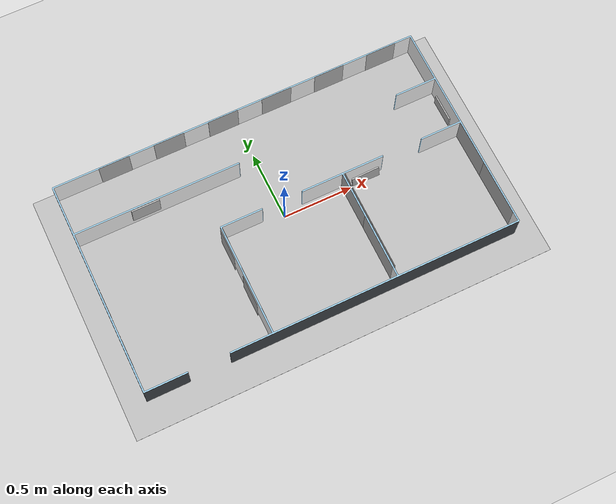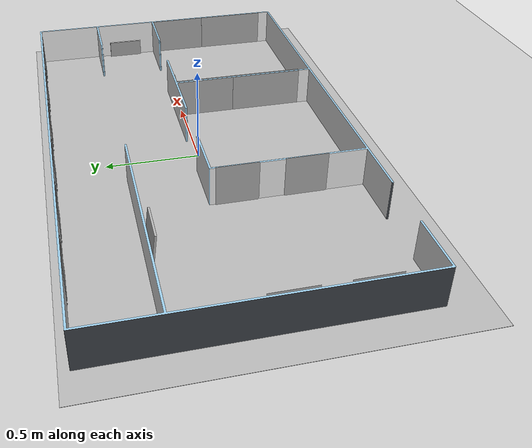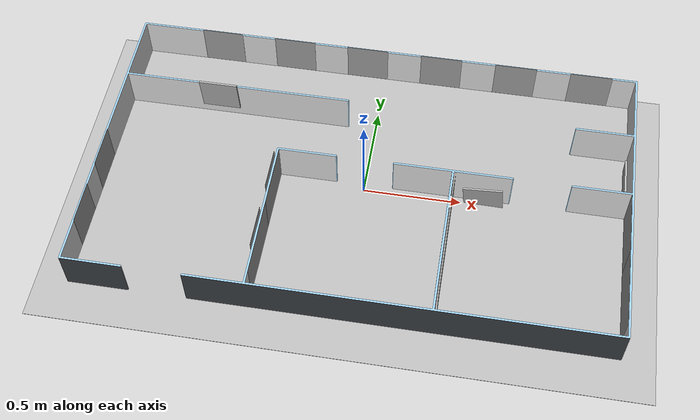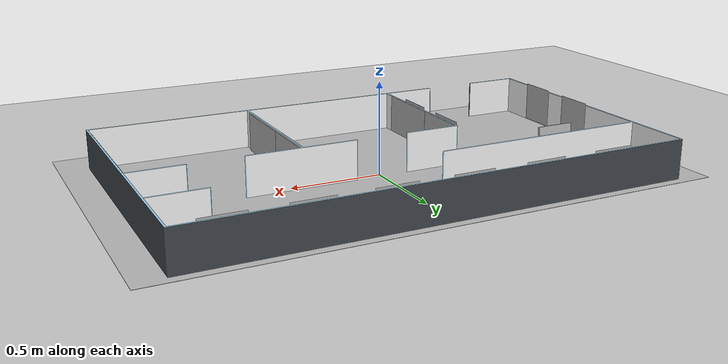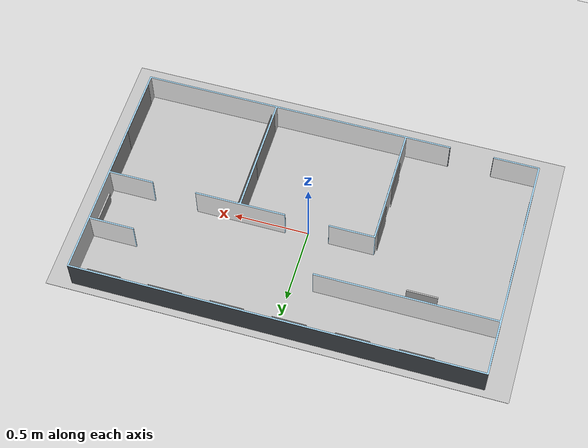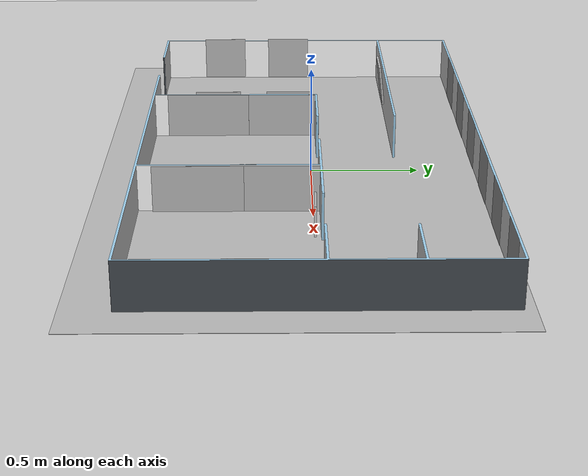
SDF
<sdf version="1.7">
 <world name="tortoisebot_warehouse_world">
  <model name="ground_plane">
   <static>1</static>
   <link name="link">
    <collision name="collision">
     <geometry><plane><normal>0 0 1</normal><size>100 100</size></plane></geometry>
     <surface>
      <contact><collide_bitmask>65535</collide_bitmask></contact>
      <friction><ode><mu>100</mu><mu2>50</mu2></ode></friction>
     </surface>
    </collision>
    <visual name="visual">
     <cast_shadows>0</cast_shadows>
     <geometry><plane><normal>0 0 1</normal><size>100 100</size></plane></geometry>
     <material>
      <script><uri>file://media/materials/scripts/gazebo.material</uri><name>Gazebo/Grey</name></script>
     </material>
    </visual>
   </link>
  </model>
  <light name="sun" type="directional">
   <pose>0 0 10 0 -0 0</pose>
   <diffuse>0.8 0.8 0.8 1</diffuse>
   <specular>0.2 0.2 0.2 1</specular>
   <attenuation>
    <range>1000</range>
    <constant>0.9</constant>
    <linear>0.01</linear>
    <quadratic>0.001</quadratic>
   </attenuation>
   <direction>-0.5 0.1 -0.9</direction>
   <spot><inner_angle>0</inner_angle><outer_angle>0</outer_angle><falloff>0</falloff></spot>
  </light>
  <scene><shadows>0</shadows><ambient>0.4 0.4 0.4 1</ambient><background>0.7 0.7 0.7 1</background></scene>
  <physics type="ode">
   <real_time_update_rate>1000</real_time_update_rate>
   <max_step_size>0.001</max_step_size>
   <real_time_factor>1</real_time_factor>
   <ode>
    <solver>
     <type>quick</type>
     <iters>150</iters>
     <precon_iters>0</precon_iters>
     <sor>1.4</sor>
     <use_dynamic_moi_rescaling>1</use_dynamic_moi_rescaling>
    </solver>
    <constraints>
     <cfm>1e-05</cfm>
     <erp>0.2</erp>
     <contact_max_correcting_vel>2000</contact_max_correcting_vel>
     <contact_surface_layer>0.01</contact_surface_layer>
    </constraints>
   </ode>
  </physics>
  <model name="tortoisebot_warehouse">
   <static>1</static>
   <link name="tortoisebot_walls">
    <inertial>
     <mass>5</mass>
     <inertia><ixx>1</ixx><ixy>0</ixy><iyy>1</iyy><ixz>0</ixz><iyz>0</iyz><izz>1</izz></inertia>
    </inertial>
    <collision name="collision">
     <geometry>
      <mesh><uri>model://tortoisebot_warehouse/meshes/tortoisebot_warehouse_walls.dae</uri></mesh>
     </geometry>
    </collision>
    <visual name="visual">
     <geometry>
      <mesh><uri>model://tortoisebot_warehouse/meshes/tortoisebot_warehouse_walls.dae</uri></mesh>
     </geometry>
    </visual>
   </link>
  </model>
  <model name="image_floor">
   <static>1</static>
   <link name="link">
    <visual name="visual">
     <cast_shadows>0</cast_shadows>
     <geometry><plane><normal>0 0 1</normal><size>3 1.8</size></plane></geometry>
     <material>
      <script>
       <uri>model://image_floor/materials/scripts</uri>
       <uri>model://image_floor/materials/textures</uri>
       <name>ImageFloor/Image</name>
      </script>
     </material>
    </visual>
   </link>
   <pose>0 -0.08 0.005 0 -0 0</pose>
  </model>
  <model name="image_trailer_dock_6">
   <static>1</static>
   <link name="link">
    <visual name="visual">
     <cast_shadows>0</cast_shadows>
     <geometry><plane><normal>0 0 1</normal><size>0.22 0.22</size></plane></geometry>
     <material>
      <script>
       <uri>model://image_trailer_dock/materials/scripts</uri>
       <uri>model://image_trailer_dock/materials/textures</uri>
       <name>ImageTrailerDock/Image</name>
      </script>
     </material>
    </visual>
   </link>
   <pose>1.1 0.76 0.12 1.57 -0 0</pose>
  </model>
  <model name="image_trailer_dock_5">
   <static>1</static>
   <link name="link">
    <visual name="visual">
     <cast_shadows>0</cast_shadows>
     <geometry><plane><normal>0 0 1</normal><size>0.22 0.22</size></plane></geometry>
     <material>
      <script>
       <uri>model://image_trailer_dock/materials/scripts</uri>
       <uri>model://image_trailer_dock/materials/textures</uri>
       <name>ImageTrailerDock/Image</name>
      </script>
     </material>
    </visual>
   </link>
   <pose>0.7 0.76 0.12 1.57 -0 0</pose>
  </model>
  <model name="image_trailer_dock_4">
   <static>1</static>
   <link name="link">
    <visual name="visual">
     <cast_shadows>0</cast_shadows>
     <geometry><plane><normal>0 0 1</normal><size>0.22 0.22</size></plane></geometry>
     <material>
      <script>
       <uri>model://image_trailer_dock/materials/scripts</uri>
       <uri>model://image_trailer_dock/materials/textures</uri>
       <name>ImageTrailerDock/Image</name>
      </script>
     </material>
    </visual>
   </link>
   <pose>0.3 0.76 0.12 1.57 -0 0</pose>
  </model>
  <model name="image_trailer_dock_3">
   <static>1</static>
   <link name="link">
    <visual name="visual">
     <cast_shadows>0</cast_shadows>
     <geometry><plane><normal>0 0 1</normal><size>0.22 0.22</size></plane></geometry>
     <material>
      <script>
       <uri>model://image_trailer_dock/materials/scripts</uri>
       <uri>model://image_trailer_dock/materials/textures</uri>
       <name>ImageTrailerDock/Image</name>
      </script>
     </material>
    </visual>
   </link>
   <pose>-0.1 0.76 0.12 1.57 -0 0</pose>
  </model>
  <model name="image_trailer_dock_2">
   <static>1</static>
   <link name="link">
    <visual name="visual">
     <cast_shadows>0</cast_shadows>
     <geometry><plane><normal>0 0 1</normal><size>0.22 0.22</size></plane></geometry>
     <material>
      <script>
       <uri>model://image_trailer_dock/materials/scripts</uri>
       <uri>model://image_trailer_dock/materials/textures</uri>
       <name>ImageTrailerDock/Image</name>
      </script>
     </material>
    </visual>
   </link>
   <pose>-0.5 0.76 0.12 1.57 -0 0</pose>
  </model>
  <model name="image_trailer_dock_1">
   <static>1</static>
   <link name="link">
    <visual name="visual">
     <cast_shadows>0</cast_shadows>
     <geometry><plane><normal>0 0 1</normal><size>0.22 0.22</size></plane></geometry>
     <material>
      <script>
       <uri>model://image_trailer_dock/materials/scripts</uri>
       <uri>model://image_trailer_dock/materials/textures</uri>
       <name>ImageTrailerDock/Image</name>
      </script>
     </material>
    </visual>
   </link>
   <pose>-0.9 0.76 0.12 1.57 -0 0</pose>
  </model>
  <model name="image_fan_1">
   <static>1</static>
   <link name="link">
    <visual name="visual">
     <cast_shadows>0</cast_shadows>
     <geometry><plane><normal>0 0 1</normal><size>0.22 0.22</size></plane></geometry>
     <material>
      <script>
       <uri>model://image_fan/materials/scripts</uri>
       <uri>model://image_fan/materials/textures</uri>
       <name>ImageFan/Image</name>
      </script>
     </material>
    </visual>
   </link>
   <pose>-0.46 -0.1 0.12 1.57 0 -1.57</pose>
  </model>
  <model name="image_fan_2">
   <static>1</static>
   <link name="link">
    <visual name="visual">
     <cast_shadows>0</cast_shadows>
     <geometry><plane><normal>0 0 1</normal><size>0.22 0.22</size></plane></geometry>
     <material>
      <script>
       <uri>model://image_fan/materials/scripts</uri>
       <uri>model://image_fan/materials/textures</uri>
       <name>ImageFan/Image</name>
      </script>
     </material>
    </visual>
   </link>
   <pose>-0.46 -0.45 0.12 1.57 0 -1.57</pose>
  </model>
  <model name="image_fan_3">
   <static>1</static>
   <link name="link">
    <visual name="visual">
     <cast_shadows>0</cast_shadows>
     <geometry><plane><normal>0 0 1</normal><size>0.22 0.22</size></plane></geometry>
     <material>
      <script>
       <uri>model://image_fan/materials/scripts</uri>
       <uri>model://image_fan/materials/textures</uri>
       <name>ImageFan/Image</name>
      </script>
     </material>
    </visual>
   </link>
   <pose>-1.33 -0.1 0.12 -1.57 -0 -1.57</pose>
  </model>
  <model name="image_fan_4">
   <static>1</static>
   <link name="link">
    <visual name="visual">
     <cast_shadows>0</cast_shadows>
     <geometry><plane><normal>0 0 1</normal><size>0.22 0.22</size></plane></geometry>
     <material>
      <script>
       <uri>model://image_fan/materials/scripts</uri>
       <uri>model://image_fan/materials/textures</uri>
       <name>ImageFan/Image</name>
      </script>
     </material>
    </visual>
   </link>
   <pose>-1.33 -0.45 0.12 -1.57 -0 -1.57</pose>
  </model>
  <model name="image_pallet_rack_1">
   <static>1</static>
   <link name="link">
    <visual name="visual">
     <cast_shadows>0</cast_shadows>
     <geometry><plane><normal>0 0 1</normal><size>0.4 0.22</size></plane></geometry>
     <material>
      <script>
       <uri>model://image_pallet_rack/materials/scripts</uri>
       <uri>model://image_pallet_rack/materials/textures</uri>
       <name>ImagePalletRack/Image</name>
      </script>
     </material>
    </visual>
   </link>
   <pose>0.44 -0.17 0.11 1.57 0 -1.57</pose>
  </model>
  <model name="image_pallet_rack_2">
   <static>1</static>
   <link name="link">
    <visual name="visual">
     <cast_shadows>0</cast_shadows>
     <geometry><plane><normal>0 0 1</normal><size>0.4 0.22</size></plane></geometry>
     <material>
      <script>
       <uri>model://image_pallet_rack/materials/scripts</uri>
       <uri>model://image_pallet_rack/materials/textures</uri>
       <name>ImagePalletRack/Image</name>
      </script>
     </material>
    </visual>
   </link>
   <pose>0.44 -0.5 0.11 1.57 0 -1.57</pose>
  </model>
  <model name="image_pallet_rack_3">
   <static>1</static>
   <link name="link">
    <visual name="visual">
     <cast_shadows>0</cast_shadows>
     <geometry><plane><normal>0 0 1</normal><size>0.4 0.22</size></plane></geometry>
     <material>
      <script>
       <uri>model://image_pallet_rack/materials/scripts</uri>
       <uri>model://image_pallet_rack/materials/textures</uri>
       <name>ImagePalletRack/Image</name>
      </script>
     </material>
    </visual>
   </link>
   <pose>-0.44 -0.17 0.11 1.57 -0 1.57</pose>
  </model>
  <model name="image_pallet_rack_4">
   <static>1</static>
   <link name="link">
    <visual name="visual">
     <cast_shadows>0</cast_shadows>
     <geometry><plane><normal>0 0 1</normal><size>0.4 0.22</size></plane></geometry>
     <material>
      <script>
       <uri>model://image_pallet_rack/materials/scripts</uri>
       <uri>model://image_pallet_rack/materials/textures</uri>
       <name>ImagePalletRack/Image</name>
      </script>
     </material>
    </visual>
   </link>
   <pose>-0.44 -0.5 0.11 1.57 -0 1.57</pose>
  </model>
  <model name="image_pallet_rack_5">
   <static>1</static>
   <link name="link">
    <visual name="visual">
     <cast_shadows>0</cast_shadows>
     <geometry><plane><normal>0 0 1</normal><size>0.4 0.22</size></plane></geometry>
     <material>
      <script>
       <uri>model://image_pallet_rack/materials/scripts</uri>
       <uri>model://image_pallet_rack/materials/textures</uri>
       <name>ImagePalletRack/Image</name>
      </script>
     </material>
    </visual>
   </link>
   <pose>1.33 -0.17 0.11 1.57 0 -1.57</pose>
  </model>
  <model name="image_pallet_rack_6">
   <static>1</static>
   <link name="link">
    <visual name="visual">
     <cast_shadows>0</cast_shadows>
     <geometry><plane><normal>0 0 1</normal><size>0.4 0.22</size></plane></geometry>
     <material>
      <script>
       <uri>model://image_pallet_rack/materials/scripts</uri>
       <uri>model://image_pallet_rack/materials/textures</uri>
       <name>ImagePalletRack/Image</name>
      </script>
     </material>
    </visual>
   </link>
   <pose>1.33 -0.5 0.11 1.57 0 -1.57</pose>
  </model>
  <model name="image_pallet_rack_7">
   <static>1</static>
   <link name="link">
    <visual name="visual">
     <cast_shadows>0</cast_shadows>
     <geometry><plane><normal>0 0 1</normal><size>0.4 0.22</size></plane></geometry>
     <material>
      <script>
       <uri>model://image_pallet_rack/materials/scripts</uri>
       <uri>model://image_pallet_rack/materials/textures</uri>
       <name>ImagePalletRack/Image</name>
      </script>
     </material>
    </visual>
   </link>
   <pose>0.46 -0.17 0.11 1.57 -0 1.57</pose>
  </model>
  <model name="image_pallet_rack_8">
   <static>1</static>
   <link name="link">
    <visual name="visual">
     <cast_shadows>0</cast_shadows>
     <geometry><plane><normal>0 0 1</normal><size>0.4 0.22</size></plane></geometry>
     <material>
      <script>
       <uri>model://image_pallet_rack/materials/scripts</uri>
       <uri>model://image_pallet_rack/materials/textures</uri>
       <name>ImagePalletRack/Image</name>
      </script>
     </material>
    </visual>
   </link>
   <pose>0.46 -0.5 0.11 1.57 -0 1.57</pose>
  </model>
  <gravity>0 0 -9.8</gravity>
  <magnetic_field>6e-06 2.3e-05 -4.2e-05</magnetic_field>
  <atmosphere type="adiabatic"/>
  <audio><device>default</device></audio>
  <spherical_coordinates>
   <surface_model>EARTH_WGS84</surface_model>
   <latitude_deg>0</latitude_deg>
   <longitude_deg>0</longitude_deg>
   <elevation>0</elevation>
   <heading_deg>0</heading_deg>
  </spherical_coordinates>
  <model name="Apriltag36_11_00000">
   <link name="main">
    <visual name="main_Visual">
     <geometry><box><size>0.2 0.2 0.01</size></box></geometry>
     <material>
      <script>
       <uri>model://Apriltag36_11_00000/materials/scripts</uri>
       <uri>model://Apriltag36_11_00000/materials/textures</uri>
       <name>Apriltag36_11_00000</name>
      </script>
     </material>
    </visual>
   </link>
   <static>1</static>
   <pose>-0.834097 0.382679 0.159449 1.68038 -0 0</pose>
  </model>
  <model name="Apriltag36_11_00001">
   <link name="main">
    <visual name="main_Visual">
     <geometry><box><size>0.2 0.2 0.01</size></box></geometry>
     <material>
      <script>
       <uri>model://Apriltag36_11_00001/materials/scripts</uri>
       <uri>model://Apriltag36_11_00001/materials/textures</uri>
       <name>Apriltag36_11_00001</name>
      </script>
     </material>
    </visual>
   </link>
   <static>1</static>
   <pose>1.31982 0.226604 0.005563 3.14159 -1.53238 3.14159</pose>
  </model>
  <model name="Apriltag36_11_00002">
   <link name="main">
    <visual name="main_Visual">
     <geometry><box><size>0.2 0.2 0.01</size></box></geometry>
     <material>
      <script>
       <uri>model://Apriltag36_11_00002/materials/scripts</uri>
       <uri>model://Apriltag36_11_00002/materials/textures</uri>
       <name>Apriltag36_11_00002</name>
      </script>
     </material>
    </visual>
   </link>
   <static>1</static>
   <pose>0.614422 0.00588 0.030186 -1.55293 1.46299 -1e-06</pose>
  </model>
 </world>
</sdf>
